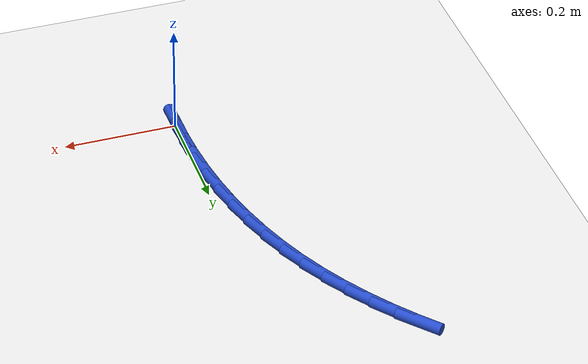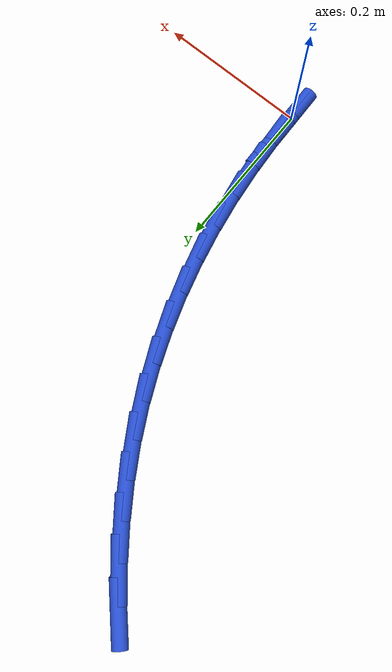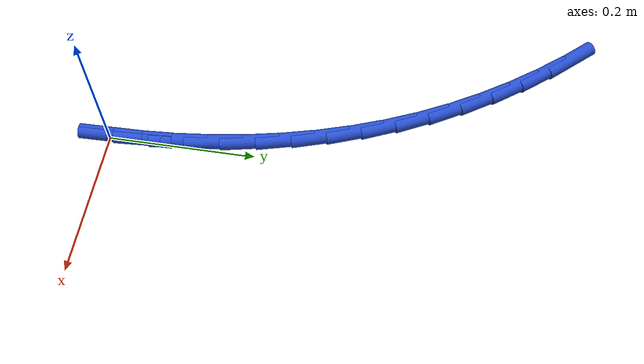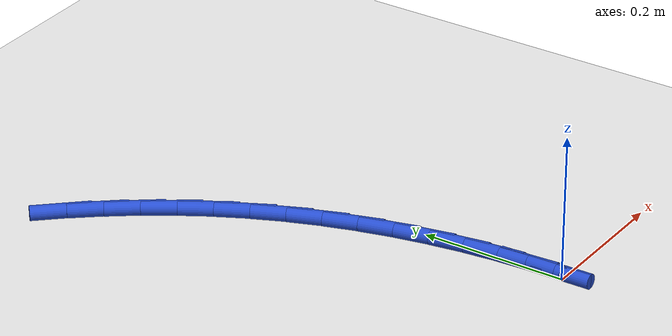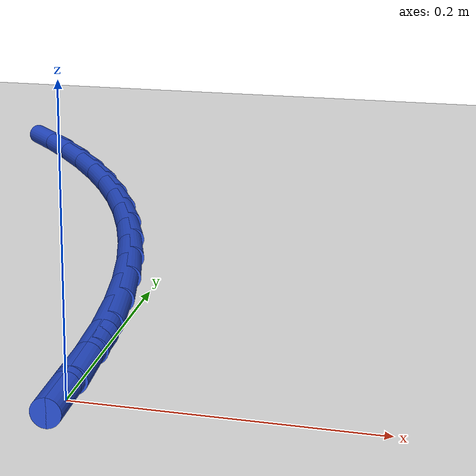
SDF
<sdf version="1.6">
 <world name="default">
  <model name="ground_plane">
   <static>1</static>
   <link name="link">
    <collision name="collision">
     <geometry><plane><normal>0 0 1</normal><size>100 100</size></plane></geometry>
     <surface><friction><ode><mu>100</mu><mu2>50</mu2></ode></friction></surface>
    </collision>
    <visual name="visual">
     <cast_shadows>0</cast_shadows>
     <geometry><plane><normal>0 0 1</normal><size>100 100</size></plane></geometry>
     <material>
      <script><uri>file://media/materials/scripts/gazebo.material</uri><name>Gazebo/WhiteGlow</name></script>
     </material>
    </visual>
   </link>
  </model>
  <model name="line">
   <link name="link_0">
    <pose>-2.0816681711721685e-17 1.3877787807814457e-17 0.01 0 1.57 -1.5501064829622118</pose>
    <collision name="collision">
     <geometry><cylinder><radius>0.01</radius><length>0.08</length></cylinder></geometry>
    </collision>
    <visual name="visual">
     <material>
      <script><name>Gazebo/Blue</name><uri>file://media/materials/scripts/gazebo.material</uri></script>
     </material>
     <geometry><cylinder><radius>0.01</radius><length>0.08</length></cylinder></geometry>
    </visual>
   </link>
   <link name="link_1">
    <pose>-0.0009968287772393065 0.04817274329676447 0.01 0 1.57 -1.5047592067060662</pose>
    <collision name="collision">
     <geometry><cylinder><radius>0.01</radius><length>0.08</length></cylinder></geometry>
    </collision>
    <visual name="visual">
     <material>
      <script><name>Gazebo/Blue</name><uri>file://media/materials/scripts/gazebo.material</uri></script>
     </material>
     <geometry><cylinder><radius>0.01</radius><length>0.08</length></cylinder></geometry>
    </visual>
   </link>
   <link name="link_2">
    <pose>-0.0041706625471364615 0.09616421887775457 0.01 0 1.57 -1.4583500174845176</pose>
    <collision name="collision">
     <geometry><cylinder><radius>0.01</radius><length>0.08</length></cylinder></geometry>
    </collision>
    <visual name="visual">
     <material>
      <script><name>Gazebo/Blue</name><uri>file://media/materials/scripts/gazebo.material</uri></script>
     </material>
     <geometry><cylinder><radius>0.01</radius><length>0.08</length></cylinder></geometry>
    </visual>
   </link>
   <link name="link_3">
    <pose>-0.009554791758662765 0.14384401800369362 0.01 0 1.57 -1.4107031057219606</pose>
    <collision name="collision">
     <geometry><cylinder><radius>0.01</radius><length>0.08</length></cylinder></geometry>
    </collision>
    <visual name="visual">
     <material>
      <script><name>Gazebo/Blue</name><uri>file://media/materials/scripts/gazebo.material</uri></script>
     </material>
     <geometry><cylinder><radius>0.01</radius><length>0.08</length></cylinder></geometry>
    </visual>
   </link>
   <link name="link_4">
    <pose>-0.017182506860789485 0.19108173193530475 0.01 0 1.57 -1.3616522260447377</pose>
    <collision name="collision">
     <geometry><cylinder><radius>0.01</radius><length>0.08</length></cylinder></geometry>
    </collision>
    <visual name="visual">
     <material>
      <script><name>Gazebo/Blue</name><uri>file://media/materials/scripts/gazebo.material</uri></script>
     </material>
     <geometry><cylinder><radius>0.01</radius><length>0.08</length></cylinder></geometry>
    </visual>
   </link>
   <link name="link_5">
    <pose>-0.027087098302487927 0.23774695193331136 0.01 0 1.57 -1.3110444036572337</pose>
    <collision name="collision">
     <geometry><cylinder><radius>0.01</radius><length>0.08</length></cylinder></geometry>
    </collision>
    <visual name="visual">
     <material>
      <script><name>Gazebo/Blue</name><uri>file://media/materials/scripts/gazebo.material</uri></script>
     </material>
     <geometry><cylinder><radius>0.01</radius><length>0.08</length></cylinder></geometry>
    </visual>
   </link>
   <link name="link_6">
    <pose>-0.03930185653272936 0.28370926925843665 0.01 0 1.57 -1.2587447396442484</pose>
    <collision name="collision">
     <geometry><cylinder><radius>0.01</radius><length>0.08</length></cylinder></geometry>
    </collision>
    <visual name="visual">
     <material>
      <script><name>Gazebo/Blue</name><uri>file://media/materials/scripts/gazebo.material</uri></script>
     </material>
     <geometry><cylinder><radius>0.01</radius><length>0.08</length></cylinder></geometry>
    </visual>
   </link>
   <link name="link_7">
    <pose>-0.05386007200048504 0.3288382751714037 0.01 0 1.57 -1.204642352678541</pose>
    <collision name="collision">
     <geometry><cylinder><radius>0.01</radius><length>0.08</length></cylinder></geometry>
    </collision>
    <visual name="visual">
     <material>
      <script><name>Gazebo/Blue</name><uri>file://media/materials/scripts/gazebo.material</uri></script>
     </material>
     <geometry><cylinder><radius>0.01</radius><length>0.08</length></cylinder></geometry>
    </visual>
   </link>
   <link name="link_8">
    <pose>-0.0707950351547263 0.37300356093293585 0.01 0 1.57 -1.1486573845259487</pose>
    <collision name="collision">
     <geometry><cylinder><radius>0.01</radius><length>0.08</length></cylinder></geometry>
    </collision>
    <visual name="visual">
     <material>
      <script><name>Gazebo/Blue</name><uri>file://media/materials/scripts/gazebo.material</uri></script>
     </material>
     <geometry><cylinder><radius>0.01</radius><length>0.08</length></cylinder></geometry>
    </visual>
   </link>
   <link name="link_9">
    <pose>-0.09014003644442435 0.4160747178037565 0.01 0 1.57 -1.0908922614907033</pose>
    <collision name="collision">
     <geometry><cylinder><radius>0.01</radius><length>0.08</length></cylinder></geometry>
    </collision>
    <visual name="visual">
     <material>
      <script><name>Gazebo/Blue</name><uri>file://media/materials/scripts/gazebo.material</uri></script>
     </material>
     <geometry><cylinder><radius>0.01</radius><length>0.08</length></cylinder></geometry>
    </visual>
   </link>
   <link name="link_10">
    <pose>-0.11192263425703565 0.4579249805710866 0.01 0 1.57 -1.03370390258395</pose>
    <collision name="collision">
     <geometry><cylinder><radius>0.01</radius><length>0.08</length></cylinder></geometry>
    </collision>
    <visual name="visual">
     <material>
      <script><name>Gazebo/Blue</name><uri>file://media/materials/scripts/gazebo.material</uri></script>
     </material>
     <geometry><cylinder><radius>0.01</radius><length>0.08</length></cylinder></geometry>
    </visual>
   </link>
   <link name="link_11">
    <pose>-0.13607674020549693 0.4984871096402028 0.01 0 1.57 -0.9790467698159384</pose>
    <collision name="collision">
     <geometry><cylinder><radius>0.01</radius><length>0.08</length></cylinder></geometry>
    </collision>
    <visual name="visual">
     <material>
      <script><name>Gazebo/Blue</name><uri>file://media/materials/scripts/gazebo.material</uri></script>
     </material>
     <geometry><cylinder><radius>0.01</radius><length>0.08</length></cylinder></geometry>
    </visual>
   </link>
   <link name="link_12">
    <pose>-0.16245992196865988 0.5377423926602141 0.01 0 1.57 -0.9269705932287826</pose>
    <collision name="collision">
     <geometry><cylinder><radius>0.01</radius><length>0.08</length></cylinder></geometry>
    </collision>
    <visual name="visual">
     <material>
      <script><name>Gazebo/Blue</name><uri>file://media/materials/scripts/gazebo.material</uri></script>
     </material>
     <geometry><cylinder><radius>0.01</radius><length>0.08</length></cylinder></geometry>
    </visual>
   </link>
   <link name="link_13">
    <pose>-0.19092752106498592 0.5756735323163991 0.01 0 1.57 -0.8774153725735977</pose>
    <collision name="collision">
     <geometry><cylinder><radius>0.01</radius><length>0.08</length></cylinder></geometry>
    </collision>
    <visual name="visual">
     <material>
      <script><name>Gazebo/Blue</name><uri>file://media/materials/scripts/gazebo.material</uri></script>
     </material>
     <geometry><cylinder><radius>0.01</radius><length>0.08</length></cylinder></geometry>
    </visual>
   </link>
   <link name="link_14">
    <pose>-0.22133487901293625 0.6122632312940358 0.01 0 1.57 -0.8302790102618446</pose>
    <collision name="collision">
     <geometry><cylinder><radius>0.01</radius><length>0.08</length></cylinder></geometry>
    </collision>
    <visual name="visual">
     <material>
      <script><name>Gazebo/Blue</name><uri>file://media/materials/scripts/gazebo.material</uri></script>
     </material>
     <geometry><cylinder><radius>0.01</radius><length>0.08</length></cylinder></geometry>
    </visual>
   </link>
   <link name="link_140">
    <pose>-8.673617379884035e-18 1.8041124150158794e-16 0.01 0 1.57 -1.550296774486969</pose>
    <collision name="collision">
     <geometry><cylinder><radius>0.01</radius><length>0.08</length></cylinder></geometry>
    </collision>
    <visual name="visual">
     <material>
      <script><name>Gazebo/Blue</name><uri>file://media/materials/scripts/gazebo.material</uri></script>
     </material>
     <geometry><cylinder><radius>0.01</radius><length>0.08</length></cylinder></geometry>
    </visual>
   </link>
   <link name="link_141">
    <pose>-0.0009875473513375407 0.048167345303315304 0.01 0 1.57 -1.5502967744869693</pose>
    <collision name="collision">
     <geometry><cylinder><radius>0.01</radius><length>0.08</length></cylinder></geometry>
    </collision>
    <visual name="visual">
     <material>
      <script><name>Gazebo/Blue</name><uri>file://media/materials/scripts/gazebo.material</uri></script>
     </material>
     <geometry><cylinder><radius>0.01</radius><length>0.08</length></cylinder></geometry>
    </visual>
   </link>
  </model>
 </world>
</sdf>
